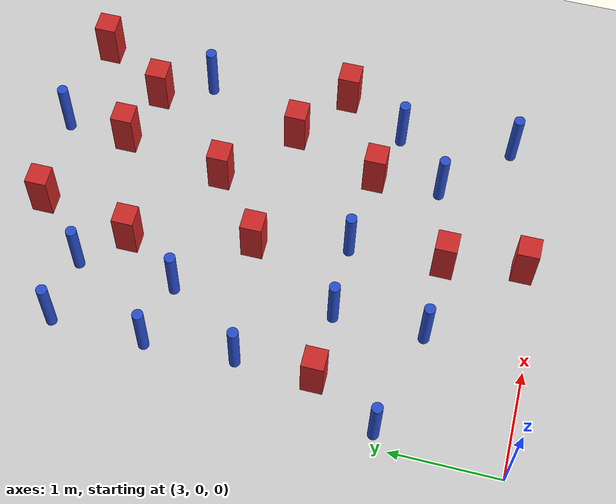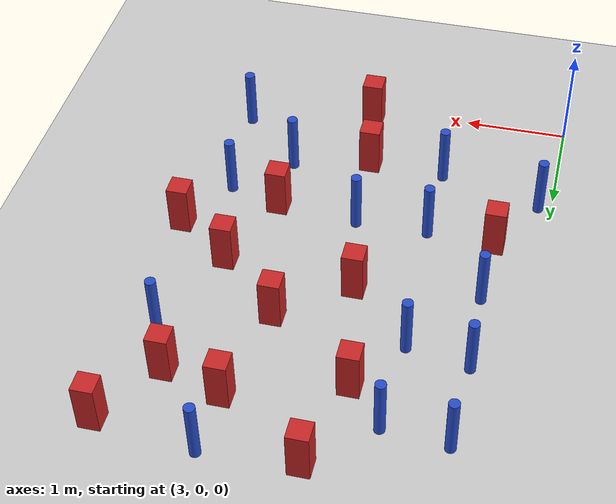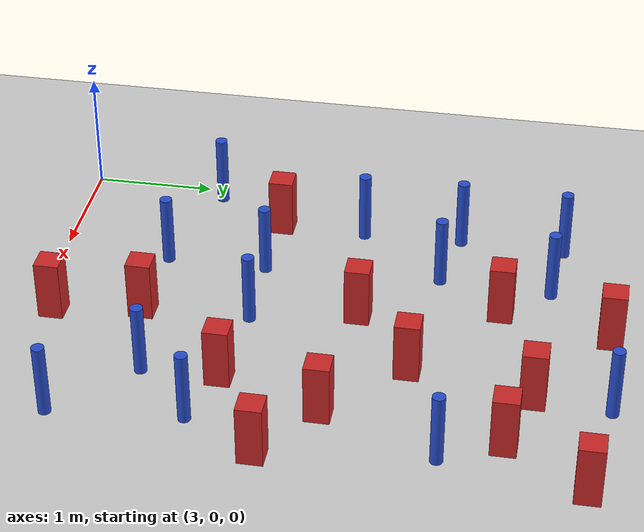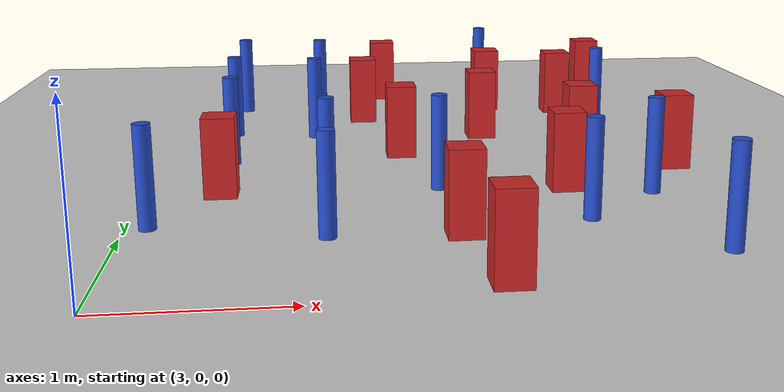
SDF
<sdf version="1.6">
 <world name="default">
  <model name="ground_plane">
   <static>1</static>
   <link name="link">
    <collision name="collision">
     <geometry><plane><normal>0 0 1</normal><size>100 100</size></plane></geometry>
     <surface><friction><ode><mu>100</mu><mu2>50</mu2></ode></friction></surface>
    </collision>
    <visual name="visual">
     <cast_shadows>0</cast_shadows>
     <geometry><plane><normal>0 0 1</normal><size>100 100</size></plane></geometry>
     <material>
      <ambient>1.0 1.0 1.0 1.0</ambient>
      <diffuse>0.8 0.8 0.8 1.0</diffuse>
      <specular>0.01 0.01 0.01 1.000000</specular>
     </material>
    </visual>
   </link>
  </model>
  <model name="pole_obstacle4">
   <static>true</static>
   <pose>4.11311792491 0.900247781949 7.38925637345e-09 -8.47170692799e-08 1.24976765038e-08 -1.74513093018e-07</pose>
   <link name="link">
    <pose>0 0 0.3 0 -0 0</pose>
    <inertial>
     <mass>1</mass>
     <inertia><ixx>0.145833</ixx><ixy>0</ixy><ixz>0</ixz><iyy>0.145833</iyy><iyz>0</iyz><izz>0.125</izz></inertia>
    </inertial>
    <collision name="collision">
     <geometry><cylinder><radius>0.05</radius><length>.6</length></cylinder></geometry>
    </collision>
    <visual name="visual">
     <geometry><cylinder><radius>0.05</radius><length>.6</length></cylinder></geometry>
     <material>
      <script><name>Gazebo/Blue</name><uri>file://media/materials/scripts/gazebo.material</uri></script>
     </material>
    </visual>
   </link>
  </model>
  <model name="square_post_obstacle12">
   <static>true</static>
   <pose>4.85128423616 0.870556990266 1.91545236811e-07 -7.35059704564e-06 1.12565212e-07 2.39332434364e-05</pose>
   <link name="link">
    <pose>0 0 0.25 0 -0 0</pose>
    <inertial>
     <mass>100</mass>
     <inertia>
      <ixx>0.166667</ixx>
      <ixy>0</ixy>
      <ixz>0</ixz>
      <iyy>0.166667</iyy>
      <iyz>0</iyz>
      <izz>0.166667</izz>
     </inertia>
    </inertial>
    <collision name="collision"><geometry><box><size>.2 .2 .5</size></box></geometry></collision>
    <visual name="visual">
     <geometry><box><size>.2 .2 .5</size></box></geometry>
     <material>
      <script><name>Gazebo/Red</name><uri>file://media/materials/scripts/gazebo.material</uri></script>
     </material>
    </visual>
   </link>
  </model>
  <model name="square_post_obstacle13">
   <static>true</static>
   <pose>4.42640117851 3.71198191929 1.91545236811e-07 -7.35059704564e-06 1.12565212e-07 2.39332434364e-05</pose>
   <link name="link">
    <pose>0 0 0.25 0 -0 0</pose>
    <inertial>
     <mass>100</mass>
     <inertia>
      <ixx>0.166667</ixx>
      <ixy>0</ixy>
      <ixz>0</ixz>
      <iyy>0.166667</iyy>
      <iyz>0</iyz>
      <izz>0.166667</izz>
     </inertia>
    </inertial>
    <collision name="collision"><geometry><box><size>.2 .2 .5</size></box></geometry></collision>
    <visual name="visual">
     <geometry><box><size>.2 .2 .5</size></box></geometry>
     <material>
      <script><name>Gazebo/Red</name><uri>file://media/materials/scripts/gazebo.material</uri></script>
     </material>
    </visual>
   </link>
  </model>
  <model name="square_post_obstacle18">
   <static>true</static>
   <pose>4.64170518958 2.58827040064 1.91545236811e-07 -7.35059704564e-06 1.12565212e-07 2.39332434364e-05</pose>
   <link name="link">
    <pose>0 0 0.25 0 -0 0</pose>
    <inertial>
     <mass>100</mass>
     <inertia>
      <ixx>0.166667</ixx>
      <ixy>0</ixy>
      <ixz>0</ixz>
      <iyy>0.166667</iyy>
      <iyz>0</iyz>
      <izz>0.166667</izz>
     </inertia>
    </inertial>
    <collision name="collision"><geometry><box><size>.2 .2 .5</size></box></geometry></collision>
    <visual name="visual">
     <geometry><box><size>.2 .2 .5</size></box></geometry>
     <material>
      <script><name>Gazebo/Red</name><uri>file://media/materials/scripts/gazebo.material</uri></script>
     </material>
    </visual>
   </link>
  </model>
  <model name="pole_obstacle19">
   <static>true</static>
   <pose>6.20375633269 0.463276716114 7.38925637345e-09 -8.47170692799e-08 1.24976765124e-08 -1.74513093015e-07</pose>
   <link name="link">
    <pose>0 0 0.3 0 -0 0</pose>
    <inertial>
     <mass>1</mass>
     <inertia><ixx>0.145833</ixx><ixy>0</ixy><ixz>0</ixz><iyy>0.145833</iyy><iyz>0</iyz><izz>0.125</izz></inertia>
    </inertial>
    <collision name="collision">
     <geometry><cylinder><radius>0.05</radius><length>.6</length></cylinder></geometry>
    </collision>
    <visual name="visual">
     <geometry><cylinder><radius>0.05</radius><length>.6</length></cylinder></geometry>
     <material>
      <script><name>Gazebo/Blue</name><uri>file://media/materials/scripts/gazebo.material</uri></script>
     </material>
    </visual>
   </link>
  </model>
  <model name="pole_obstacle23">
   <static>true</static>
   <pose>6.11243076244 1.51513492665 7.38925637345e-09 -8.471706928e-08 1.24976765134e-08 -1.74513093015e-07</pose>
   <link name="link">
    <pose>0 0 0.3 0 -0 0</pose>
    <inertial>
     <mass>1</mass>
     <inertia><ixx>0.145833</ixx><ixy>0</ixy><ixz>0</ixz><iyy>0.145833</iyy><iyz>0</iyz><izz>0.125</izz></inertia>
    </inertial>
    <collision name="collision">
     <geometry><cylinder><radius>0.05</radius><length>.6</length></cylinder></geometry>
    </collision>
    <visual name="visual">
     <geometry><cylinder><radius>0.05</radius><length>.6</length></cylinder></geometry>
     <material>
      <script><name>Gazebo/Blue</name><uri>file://media/materials/scripts/gazebo.material</uri></script>
     </material>
    </visual>
   </link>
  </model>
  <model name="square_post_obstacle47">
   <static>true</static>
   <pose>6.43437921488 2.0991957555 1.91545236811e-07 -7.35059704564e-06 1.12565212e-07 2.39332434364e-05</pose>
   <link name="link">
    <pose>0 0 0.25 0 -0 0</pose>
    <inertial>
     <mass>100</mass>
     <inertia>
      <ixx>0.166667</ixx>
      <ixy>0</ixy>
      <ixz>0</ixz>
      <iyy>0.166667</iyy>
      <iyz>0</iyz>
      <izz>0.166667</izz>
     </inertia>
    </inertial>
    <collision name="collision"><geometry><box><size>.2 .2 .5</size></box></geometry></collision>
    <visual name="visual">
     <geometry><box><size>.2 .2 .5</size></box></geometry>
     <material>
      <script><name>Gazebo/Red</name><uri>file://media/materials/scripts/gazebo.material</uri></script>
     </material>
    </visual>
   </link>
  </model>
  <model name="square_post_obstacle48">
   <static>true</static>
   <pose>3.47751038495 1.74975684667 1.91545236811e-07 -7.35059704564e-06 1.12565212e-07 2.39332434364e-05</pose>
   <link name="link">
    <pose>0 0 0.25 0 -0 0</pose>
    <inertial>
     <mass>100</mass>
     <inertia>
      <ixx>0.166667</ixx>
      <ixy>0</ixy>
      <ixz>0</ixz>
      <iyy>0.166667</iyy>
      <iyz>0</iyz>
      <izz>0.166667</izz>
     </inertia>
    </inertial>
    <collision name="collision"><geometry><box><size>.2 .2 .5</size></box></geometry></collision>
    <visual name="visual">
     <geometry><box><size>.2 .2 .5</size></box></geometry>
     <material>
      <script><name>Gazebo/Red</name><uri>file://media/materials/scripts/gazebo.material</uri></script>
     </material>
    </visual>
   </link>
  </model>
  <model name="square_post_obstacle52">
   <static>true</static>
   <pose>6.44831381062 4.52177181962 1.91545236811e-07 -7.35059704564e-06 1.12565212e-07 2.39332434364e-05</pose>
   <link name="link">
    <pose>0 0 0.25 0 -0 0</pose>
    <inertial>
     <mass>100</mass>
     <inertia>
      <ixx>0.166667</ixx>
      <ixy>0</ixy>
      <ixz>0</ixz>
      <iyy>0.166667</iyy>
      <iyz>0</iyz>
      <izz>0.166667</izz>
     </inertia>
    </inertial>
    <collision name="collision"><geometry><box><size>.2 .2 .5</size></box></geometry></collision>
    <visual name="visual">
     <geometry><box><size>.2 .2 .5</size></box></geometry>
     <material>
      <script><name>Gazebo/Red</name><uri>file://media/materials/scripts/gazebo.material</uri></script>
     </material>
    </visual>
   </link>
  </model>
  <model name="square_post_obstacle63">
   <static>true</static>
   <pose>5.28149180903 3.07424055475 1.91545236811e-07 -7.35059704564e-06 1.12565212e-07 2.39332434364e-05</pose>
   <link name="link">
    <pose>0 0 0.25 0 -0 0</pose>
    <inertial>
     <mass>100</mass>
     <inertia>
      <ixx>0.166667</ixx>
      <ixy>0</ixy>
      <ixz>0</ixz>
      <iyy>0.166667</iyy>
      <iyz>0</iyz>
      <izz>0.166667</izz>
     </inertia>
    </inertial>
    <collision name="collision"><geometry><box><size>.2 .2 .5</size></box></geometry></collision>
    <visual name="visual">
     <geometry><box><size>.2 .2 .5</size></box></geometry>
     <material>
      <script><name>Gazebo/Red</name><uri>file://media/materials/scripts/gazebo.material</uri></script>
     </material>
    </visual>
   </link>
  </model>
  <model name="pole_obstacle84">
   <static>true</static>
   <pose>3.45701429548 3.28425855211 7.38925637345e-09 -8.47170692798e-08 1.24976764939e-08 -1.74513093025e-07</pose>
   <link name="link">
    <pose>0 0 0.3 0 -0 0</pose>
    <inertial>
     <mass>1</mass>
     <inertia><ixx>0.145833</ixx><ixy>0</ixy><ixz>0</ixz><iyy>0.145833</iyy><iyz>0</iyz><izz>0.125</izz></inertia>
    </inertial>
    <collision name="collision">
     <geometry><cylinder><radius>0.05</radius><length>.6</length></cylinder></geometry>
    </collision>
    <visual name="visual">
     <geometry><cylinder><radius>0.05</radius><length>.6</length></cylinder></geometry>
     <material>
      <script><name>Gazebo/Blue</name><uri>file://media/materials/scripts/gazebo.material</uri></script>
     </material>
    </visual>
   </link>
  </model>
  <model name="square_post_obstacle81">
   <static>true</static>
   <pose>4.63355549708 4.59677811266 1.91545236811e-07 -7.35059704564e-06 1.12565212e-07 2.39332434364e-05</pose>
   <link name="link">
    <pose>0 0 0.25 0 -0 0</pose>
    <inertial>
     <mass>100</mass>
     <inertia>
      <ixx>0.166667</ixx>
      <ixy>0</ixy>
      <ixz>0</ixz>
      <iyy>0.166667</iyy>
      <iyz>0</iyz>
      <izz>0.166667</izz>
     </inertia>
    </inertial>
    <collision name="collision"><geometry><box><size>.2 .2 .5</size></box></geometry></collision>
    <visual name="visual">
     <geometry><box><size>.2 .2 .5</size></box></geometry>
     <material>
      <script><name>Gazebo/Red</name><uri>file://media/materials/scripts/gazebo.material</uri></script>
     </material>
    </visual>
   </link>
  </model>
  <model name="pole_obstacle102">
   <static>true</static>
   <pose>3.49086313598 2.46137022069 7.38925637345e-09 -8.47170692798e-08 1.24976764939e-08 -1.74513093025e-07</pose>
   <link name="link">
    <pose>0 0 0.3 0 -0 0</pose>
    <inertial>
     <mass>1</mass>
     <inertia><ixx>0.145833</ixx><ixy>0</ixy><ixz>0</ixz><iyy>0.145833</iyy><iyz>0</iyz><izz>0.125</izz></inertia>
    </inertial>
    <collision name="collision">
     <geometry><cylinder><radius>0.05</radius><length>.6</length></cylinder></geometry>
    </collision>
    <visual name="visual">
     <geometry><cylinder><radius>0.05</radius><length>.6</length></cylinder></geometry>
     <material>
      <script><name>Gazebo/Blue</name><uri>file://media/materials/scripts/gazebo.material</uri></script>
     </material>
    </visual>
   </link>
  </model>
  <model name="square_post_obstacle95">
   <static>true</static>
   <pose>6.03540232982 3.88899969015 1.91545236811e-07 -7.35059704564e-06 1.12565212e-07 2.39332434364e-05</pose>
   <link name="link">
    <pose>0 0 0.25 0 -0 0</pose>
    <inertial>
     <mass>100</mass>
     <inertia>
      <ixx>0.166667</ixx>
      <ixy>0</ixy>
      <ixz>0</ixz>
      <iyy>0.166667</iyy>
      <iyz>0</iyz>
      <izz>0.166667</izz>
     </inertia>
    </inertial>
    <collision name="collision"><geometry><box><size>.2 .2 .5</size></box></geometry></collision>
    <visual name="visual">
     <geometry><box><size>.2 .2 .5</size></box></geometry>
     <material>
      <script><name>Gazebo/Red</name><uri>file://media/materials/scripts/gazebo.material</uri></script>
     </material>
    </visual>
   </link>
  </model>
  <model name="pole_obstacle113">
   <static>true</static>
   <pose>6.25933875689 3.42101485677 7.38925637345e-09 -8.47170692798e-08 1.24976764937e-08 -1.74513093023e-07</pose>
   <link name="link">
    <pose>0 0 0.3 0 -0 0</pose>
    <inertial>
     <mass>1</mass>
     <inertia><ixx>0.145833</ixx><ixy>0</ixy><ixz>0</ixz><iyy>0.145833</iyy><iyz>0</iyz><izz>0.125</izz></inertia>
    </inertial>
    <collision name="collision">
     <geometry><cylinder><radius>0.05</radius><length>.6</length></cylinder></geometry>
    </collision>
    <visual name="visual">
     <geometry><cylinder><radius>0.05</radius><length>.6</length></cylinder></geometry>
     <material>
      <script><name>Gazebo/Blue</name><uri>file://media/materials/scripts/gazebo.material</uri></script>
     </material>
    </visual>
   </link>
  </model>
  <model name="pole_obstacle116">
   <static>true</static>
   <pose>3.12870632285 1.1459800808 7.38925637345e-09 -8.471706928e-08 1.24976765152e-08 -1.74513093012e-07</pose>
   <link name="link">
    <pose>0 0 0.3 0 -0 0</pose>
    <inertial>
     <mass>1</mass>
     <inertia><ixx>0.145833</ixx><ixy>0</ixy><ixz>0</ixz><iyy>0.145833</iyy><iyz>0</iyz><izz>0.125</izz></inertia>
    </inertial>
    <collision name="collision">
     <geometry><cylinder><radius>0.05</radius><length>.6</length></cylinder></geometry>
    </collision>
    <visual name="visual">
     <geometry><cylinder><radius>0.05</radius><length>.6</length></cylinder></geometry>
     <material>
      <script><name>Gazebo/Blue</name><uri>file://media/materials/scripts/gazebo.material</uri></script>
     </material>
    </visual>
   </link>
  </model>
  <model name="pole_obstacle122">
   <static>true</static>
   <pose>4.81335820865 1.73557116808 7.38925637345e-09 -8.471706928e-08 1.24976765134e-08 -1.74513093015e-07</pose>
   <link name="link">
    <pose>0 0 0.3 0 -0 0</pose>
    <inertial>
     <mass>1</mass>
     <inertia><ixx>0.145833</ixx><ixy>0</ixy><ixz>0</ixz><iyy>0.145833</iyy><iyz>0</iyz><izz>0.125</izz></inertia>
    </inertial>
    <collision name="collision">
     <geometry><cylinder><radius>0.05</radius><length>.6</length></cylinder></geometry>
    </collision>
    <visual name="visual">
     <geometry><cylinder><radius>0.05</radius><length>.6</length></cylinder></geometry>
     <material>
      <script><name>Gazebo/Blue</name><uri>file://media/materials/scripts/gazebo.material</uri></script>
     </material>
    </visual>
   </link>
  </model>
  <model name="pole_obstacle136">
   <static>true</static>
   <pose>3.48284960505 4.14823346513 7.38925637345e-09 -8.47170692798e-08 1.24976765033e-08 -1.74513093019e-07</pose>
   <link name="link">
    <pose>0 0 0.3 0 -0 0</pose>
    <inertial>
     <mass>1</mass>
     <inertia><ixx>0.145833</ixx><ixy>0</ixy><ixz>0</ixz><iyy>0.145833</iyy><iyz>0</iyz><izz>0.125</izz></inertia>
    </inertial>
    <collision name="collision">
     <geometry><cylinder><radius>0.05</radius><length>.6</length></cylinder></geometry>
    </collision>
    <visual name="visual">
     <geometry><cylinder><radius>0.05</radius><length>.6</length></cylinder></geometry>
     <material>
      <script><name>Gazebo/Blue</name><uri>file://media/materials/scripts/gazebo.material</uri></script>
     </material>
    </visual>
   </link>
  </model>
  <model name="pole_obstacle140">
   <static>true</static>
   <pose>5.60692441553 1.04753797821 7.38925637345e-09 -8.47170692801e-08 1.24976765139e-08 -1.74513093014e-07</pose>
   <link name="link">
    <pose>0 0 0.3 0 -0 0</pose>
    <inertial>
     <mass>1</mass>
     <inertia><ixx>0.145833</ixx><ixy>0</ixy><ixz>0</ixz><iyy>0.145833</iyy><iyz>0</iyz><izz>0.125</izz></inertia>
    </inertial>
    <collision name="collision">
     <geometry><cylinder><radius>0.05</radius><length>.6</length></cylinder></geometry>
    </collision>
    <visual name="visual">
     <geometry><cylinder><radius>0.05</radius><length>.6</length></cylinder></geometry>
     <material>
      <script><name>Gazebo/Blue</name><uri>file://media/materials/scripts/gazebo.material</uri></script>
     </material>
    </visual>
   </link>
  </model>
  <model name="square_post_obstacle135">
   <static>true</static>
   <pose>5.89407367276 2.49040648923 1.91545236811e-07 -7.35059704564e-06 1.12565212e-07 2.39332434364e-05</pose>
   <link name="link">
    <pose>0 0 0.25 0 -0 0</pose>
    <inertial>
     <mass>100</mass>
     <inertia>
      <ixx>0.166667</ixx>
      <ixy>0</ixy>
      <ixz>0</ixz>
      <iyy>0.166667</iyy>
      <iyz>0</iyz>
      <izz>0.166667</izz>
     </inertia>
    </inertial>
    <collision name="collision"><geometry><box><size>.2 .2 .5</size></box></geometry></collision>
    <visual name="visual">
     <geometry><box><size>.2 .2 .5</size></box></geometry>
     <material>
      <script><name>Gazebo/Red</name><uri>file://media/materials/scripts/gazebo.material</uri></script>
     </material>
    </visual>
   </link>
  </model>
  <model name="square_post_obstacle143">
   <static>true</static>
   <pose>4.97231283679 0.160284402083 1.91545236811e-07 -7.35059704564e-06 1.12565212e-07 2.39332434364e-05</pose>
   <link name="link">
    <pose>0 0 0.25 0 -0 0</pose>
    <inertial>
     <mass>100</mass>
     <inertia>
      <ixx>0.166667</ixx>
      <ixy>0</ixy>
      <ixz>0</ixz>
      <iyy>0.166667</iyy>
      <iyz>0</iyz>
      <izz>0.166667</izz>
     </inertia>
    </inertial>
    <collision name="collision"><geometry><box><size>.2 .2 .5</size></box></geometry></collision>
    <visual name="visual">
     <geometry><box><size>.2 .2 .5</size></box></geometry>
     <material>
      <script><name>Gazebo/Red</name><uri>file://media/materials/scripts/gazebo.material</uri></script>
     </material>
    </visual>
   </link>
  </model>
  <model name="pole_obstacle155">
   <static>true</static>
   <pose>4.04632437212 3.17565505135 7.38925637345e-09 -8.47170692799e-08 1.24976765e-08 -1.7451309302e-07</pose>
   <link name="link">
    <pose>0 0 0.3 0 -0 0</pose>
    <inertial>
     <mass>1</mass>
     <inertia><ixx>0.145833</ixx><ixy>0</ixy><ixz>0</ixz><iyy>0.145833</iyy><iyz>0</iyz><izz>0.125</izz></inertia>
    </inertial>
    <collision name="collision">
     <geometry><cylinder><radius>0.05</radius><length>.6</length></cylinder></geometry>
    </collision>
    <visual name="visual">
     <geometry><cylinder><radius>0.05</radius><length>.6</length></cylinder></geometry>
     <material>
      <script><name>Gazebo/Blue</name><uri>file://media/materials/scripts/gazebo.material</uri></script>
     </material>
    </visual>
   </link>
  </model>
  <model name="pole_obstacle164">
   <static>true</static>
   <pose>4.09067226637 4.08936558936 7.38925637345e-09 -8.47170692796e-08 1.24976764786e-08 -1.74513093032e-07</pose>
   <link name="link">
    <pose>0 0 0.3 0 -0 0</pose>
    <inertial>
     <mass>1</mass>
     <inertia><ixx>0.145833</ixx><ixy>0</ixy><ixz>0</ixz><iyy>0.145833</iyy><iyz>0</iyz><izz>0.125</izz></inertia>
    </inertial>
    <collision name="collision">
     <geometry><cylinder><radius>0.05</radius><length>.6</length></cylinder></geometry>
    </collision>
    <visual name="visual">
     <geometry><cylinder><radius>0.05</radius><length>.6</length></cylinder></geometry>
     <material>
      <script><name>Gazebo/Blue</name><uri>file://media/materials/scripts/gazebo.material</uri></script>
     </material>
    </visual>
   </link>
  </model>
  <model name="square_post_obstacle191">
   <static>true</static>
   <pose>5.59867862605 1.66650298225 1.91545236811e-07 -7.35059704564e-06 1.12565212e-07 2.39332434364e-05</pose>
   <link name="link">
    <pose>0 0 0.25 0 -0 0</pose>
    <inertial>
     <mass>100</mass>
     <inertia>
      <ixx>0.166667</ixx>
      <ixy>0</ixy>
      <ixz>0</ixz>
      <iyy>0.166667</iyy>
      <iyz>0</iyz>
      <izz>0.166667</izz>
     </inertia>
    </inertial>
    <collision name="collision"><geometry><box><size>.2 .2 .5</size></box></geometry></collision>
    <visual name="visual">
     <geometry><box><size>.2 .2 .5</size></box></geometry>
     <material>
      <script><name>Gazebo/Red</name><uri>file://media/materials/scripts/gazebo.material</uri></script>
     </material>
    </visual>
   </link>
  </model>
  <model name="square_post_obstacle196">
   <static>true</static>
   <pose>5.47101884932 4.05301806671 1.91545236811e-07 -7.35059704564e-06 1.12565212e-07 2.39332434364e-05</pose>
   <link name="link">
    <pose>0 0 0.25 0 -0 0</pose>
    <inertial>
     <mass>100</mass>
     <inertia>
      <ixx>0.166667</ixx>
      <ixy>0</ixy>
      <ixz>0</ixz>
      <iyy>0.166667</iyy>
      <iyz>0</iyz>
      <izz>0.166667</izz>
     </inertia>
    </inertial>
    <collision name="collision"><geometry><box><size>.2 .2 .5</size></box></geometry></collision>
    <visual name="visual">
     <geometry><box><size>.2 .2 .5</size></box></geometry>
     <material>
      <script><name>Gazebo/Red</name><uri>file://media/materials/scripts/gazebo.material</uri></script>
     </material>
    </visual>
   </link>
  </model>
  <model name="pole_obstacle191">
   <static>true</static>
   <pose>4.11892156172 1.72681964342 7.38925637345e-09 -8.471706928e-08 1.24976765134e-08 -1.74513093015e-07</pose>
   <link name="link">
    <pose>0 0 0.3 0 -0 0</pose>
    <inertial>
     <mass>1</mass>
     <inertia><ixx>0.145833</ixx><ixy>0</ixy><ixz>0</ixz><iyy>0.145833</iyy><iyz>0</iyz><izz>0.125</izz></inertia>
    </inertial>
    <collision name="collision">
     <geometry><cylinder><radius>0.05</radius><length>.6</length></cylinder></geometry>
    </collision>
    <visual name="visual">
     <geometry><cylinder><radius>0.05</radius><length>.6</length></cylinder></geometry>
     <material>
      <script><name>Gazebo/Blue</name><uri>file://media/materials/scripts/gazebo.material</uri></script>
     </material>
    </visual>
   </link>
  </model>
  <model name="pole_obstacle209">
   <static>true</static>
   <pose>5.51407037218 4.65225956878 7.38925637345e-09 -8.47170692796e-08 1.24976764786e-08 -1.74513093032e-07</pose>
   <link name="link">
    <pose>0 0 0.3 0 -0 0</pose>
    <inertial>
     <mass>1</mass>
     <inertia><ixx>0.145833</ixx><ixy>0</ixy><ixz>0</ixz><iyy>0.145833</iyy><iyz>0</iyz><izz>0.125</izz></inertia>
    </inertial>
    <collision name="collision">
     <geometry><cylinder><radius>0.05</radius><length>.6</length></cylinder></geometry>
    </collision>
    <visual name="visual">
     <geometry><cylinder><radius>0.05</radius><length>.6</length></cylinder></geometry>
     <material>
      <script><name>Gazebo/Blue</name><uri>file://media/materials/scripts/gazebo.material</uri></script>
     </material>
    </visual>
   </link>
  </model>
 </world>
</sdf>
